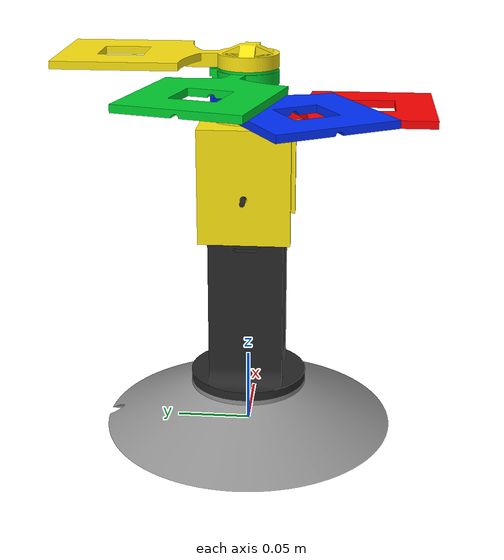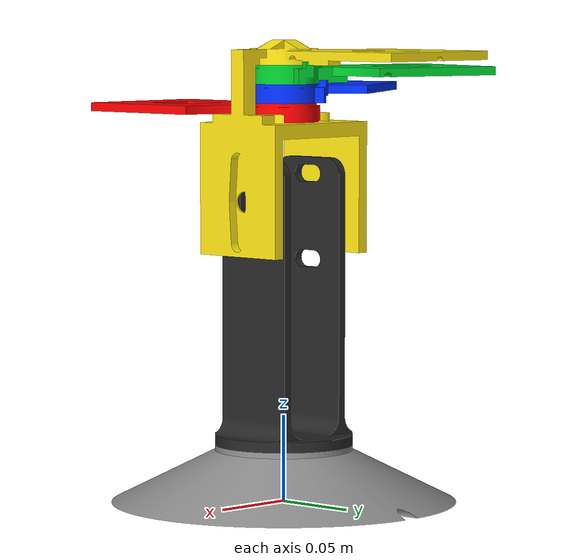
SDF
<sdf version='1.11'>
  <model name='solar_flower'>
    <link name='base_footprint'>
      <inertial>
        <pose>0 0 0 0 0 0</pose>
        <mass>0.251</mass>
        <inertia>
          <ixx>0.000101</ixx>
          <ixy>0</ixy>
          <ixz>0</ixz>
          <iyy>0.000101</iyy>
          <iyz>0</iyz>
          <izz>0.000101</izz>
        </inertia>
      </inertial>
      <visual name='base_footprint_fixed_joint_lump__base_link_visual'>
        <pose>0 0 0 1.5708 0 0</pose>
        <geometry>
          <mesh>
            <scale>0.001 0.001 0.001</scale>
            <uri>model://solar_flower_description/meshes/base_link.stl</uri>
          </mesh>
        </geometry>
        <material>
          <diffuse>0.5625 0.5625 0.5625 1</diffuse>
          <ambient>0.5625 0.5625 0.5625 1</ambient>
        </material>
      </visual>
    </link>
    <joint name='azimuth_joint' type='revolute'>
      <pose relative_to='base_footprint'>0 0 0 1.5708 0 0</pose>
      <parent>base_footprint</parent>
      <child>azimuth_link</child>
      <axis>
        <xyz>0 1 0</xyz>
        <limit>
          <lower>-2.7999999999999998</lower>
          <upper>2.7999999999999998</upper>
          <effort>10</effort>
          <velocity>1</velocity>
        </limit>
        <dynamics>
          <spring_reference>0</spring_reference>
          <spring_stiffness>0</spring_stiffness>
        </dynamics>
      </axis>
    </joint>
    <link name='azimuth_link'>
      <pose relative_to='azimuth_joint'>0 0 0 0 0 0</pose>
      <inertial>
        <pose>0 0 0 0 0 0</pose>
        <mass>0.14999999999999999</mass>
        <inertia>
          <ixx>8.0000000000000007e-05</ixx>
          <ixy>0</ixy>
          <ixz>0</ixz>
          <iyy>8.0000000000000007e-05</iyy>
          <iyz>0</iyz>
          <izz>8.0000000000000007e-05</izz>
        </inertia>
      </inertial>
      <visual name='azimuth_link_visual'>
        <pose>0 0 0 0 0 0</pose>
        <geometry>
          <mesh>
            <scale>0.001 0.001 0.001</scale>
            <uri>model://solar_flower_description/meshes/azimuth_link.stl</uri>
          </mesh>
        </geometry>
        <material>
          <diffuse>0.149999991 0.149999991 0.149999991 1</diffuse>
          <ambient>0.149999991 0.149999991 0.149999991 1</ambient>
        </material>
      </visual>
    </link>
    <joint name='tilt_joint' type='revolute'>
      <pose relative_to='azimuth_link'>0.032500000000000001 0.17535000000000001 0 0 0 0</pose>
      <parent>azimuth_link</parent>
      <child>tilt_link</child>
      <axis>
        <xyz>1 0 0</xyz>
        <limit>
          <lower>-0.52400000000000002</lower>
          <upper>0.52400000000000002</upper>
          <effort>10</effort>
          <velocity>1</velocity>
        </limit>
        <dynamics>
          <spring_reference>0</spring_reference>
          <spring_stiffness>0</spring_stiffness>
        </dynamics>
      </axis>
    </joint>
    <link name='tilt_link'>
      <pose relative_to='tilt_joint'>0 0 0 0 0 0</pose>
      <inertial>
        <pose>0 0 0 0 0 0</pose>
        <mass>0.20000000000000001</mass>
        <inertia>
          <ixx>0.0001</ixx>
          <ixy>0</ixy>
          <ixz>0</ixz>
          <iyy>0.0001</iyy>
          <iyz>0</iyz>
          <izz>0.0001</izz>
        </inertia>
      </inertial>
      <visual name='tilt_link_visual'>
        <pose>-0.032500000000000001 -0.17535000000000001 0 0 0 0</pose>
        <geometry>
          <mesh>
            <scale>0.001 0.001 0.001</scale>
            <uri>model://solar_flower_description/meshes/tilt_link.stl</uri>
          </mesh>
        </geometry>
        <material>
          <diffuse>1 0.900000036 0.0625 1</diffuse>
          <ambient>1 0.900000036 0.0625 1</ambient>
        </material>
      </visual>
    </link>
    <joint name='blue_petal_joint' type='revolute'>
      <pose relative_to='tilt_link'>-0.032500000000000001 0.059950000000000003 0 0 0 0</pose>
      <parent>tilt_link</parent>
      <child>blue_petal_link</child>
      <axis>
        <xyz>0 1 0</xyz>
        <limit>
          <lower>-2.0939999999999999</lower>
          <upper>0</upper>
          <effort>5</effort>
          <velocity>1</velocity>
        </limit>
        <dynamics>
          <spring_reference>0</spring_reference>
          <spring_stiffness>0</spring_stiffness>
        </dynamics>
      </axis>
    </joint>
    <link name='blue_petal_link'>
      <pose relative_to='blue_petal_joint'>0 0 0 0 0 0</pose>
      <inertial>
        <pose>0 0 0 0 0 0</pose>
        <mass>0.050000000000000003</mass>
        <inertia>
          <ixx>2.0000000000000002e-05</ixx>
          <ixy>0</ixy>
          <ixz>0</ixz>
          <iyy>2.0000000000000002e-05</iyy>
          <iyz>0</iyz>
          <izz>2.0000000000000002e-05</izz>
        </inertia>
      </inertial>
      <visual name='blue_petal_link_visual'>
        <pose>0 -0.23530000000000001 0 0 0 0</pose>
        <geometry>
          <mesh>
            <scale>0.001 0.001 0.001</scale>
            <uri>model://solar_flower_description/meshes/blue_petal_link.stl</uri>
          </mesh>
        </geometry>
        <material>
          <diffuse>0 0.187500015 1 1</diffuse>
          <ambient>0 0.187500015 1 1</ambient>
        </material>
      </visual>
    </link>
    <joint name='green_petal_joint' type='revolute'>
      <pose relative_to='tilt_link'>-0.032500000000000001 0.070949999999999999 0 0 0 0</pose>
      <parent>tilt_link</parent>
      <child>green_petal_link</child>
      <axis>
        <xyz>0 1 0</xyz>
        <limit>
          <lower>-1.3089999999999999</lower>
          <upper>0</upper>
          <effort>5</effort>
          <velocity>1</velocity>
        </limit>
        <dynamics>
          <spring_reference>0</spring_reference>
          <spring_stiffness>0</spring_stiffness>
        </dynamics>
      </axis>
    </joint>
    <link name='green_petal_link'>
      <pose relative_to='green_petal_joint'>0 0 0 0 0 0</pose>
      <inertial>
        <pose>0 0 0 0 0 0</pose>
        <mass>0.050000000000000003</mass>
        <inertia>
          <ixx>2.0000000000000002e-05</ixx>
          <ixy>0</ixy>
          <ixz>0</ixz>
          <iyy>2.0000000000000002e-05</iyy>
          <iyz>0</iyz>
          <izz>2.0000000000000002e-05</izz>
        </inertia>
      </inertial>
      <visual name='green_petal_link_visual'>
        <pose>0 -0.24629999999999999 0 0 0 0</pose>
        <geometry>
          <mesh>
            <scale>0.001 0.001 0.001</scale>
            <uri>model://solar_flower_description/meshes/green_petal_link.stl</uri>
          </mesh>
        </geometry>
        <material>
          <diffuse>0 0.81249994 0.187500015 1</diffuse>
          <ambient>0 0.81249994 0.187500015 1</ambient>
        </material>
      </visual>
    </link>
    <joint name='red_petal_joint' type='revolute'>
      <pose relative_to='tilt_link'>-0.032500000000000001 0.04895 0 0 0 0</pose>
      <parent>tilt_link</parent>
      <child>red_petal_link</child>
      <axis>
        <xyz>0 1 0</xyz>
        <limit>
          <lower>-3.1419999999999999</lower>
          <upper>0</upper>
          <effort>5</effort>
          <velocity>1</velocity>
        </limit>
        <dynamics>
          <spring_reference>0</spring_reference>
          <spring_stiffness>0</spring_stiffness>
        </dynamics>
      </axis>
    </joint>
    <link name='red_petal_link'>
      <pose relative_to='red_petal_joint'>0 0 0 0 0 0</pose>
      <inertial>
        <pose>0 0 0 0 0 0</pose>
        <mass>0.050000000000000003</mass>
        <inertia>
          <ixx>2.0000000000000002e-05</ixx>
          <ixy>0</ixy>
          <ixz>0</ixz>
          <iyy>2.0000000000000002e-05</iyy>
          <iyz>0</iyz>
          <izz>2.0000000000000002e-05</izz>
        </inertia>
      </inertial>
      <visual name='red_petal_link_visual'>
        <pose>0 -0.2243 0 0 0 0</pose>
        <geometry>
          <mesh>
            <scale>0.001 0.001 0.001</scale>
            <uri>model://solar_flower_description/meshes/red_petal_link.stl</uri>
          </mesh>
        </geometry>
        <material>
          <diffuse>1 0 0 1</diffuse>
          <ambient>1 0 0 1</ambient>
        </material>
      </visual>
    </link>
    <plugin name='gz::sim::systems::JointPositionController' filename='gz-sim-joint-position-controller-system'>
      <joint_name>azimuth_joint</joint_name>
      <joint_index>0</joint_index>
      <p_gain>5.0</p_gain>
      <i_gain>0.0</i_gain>
      <d_gain>0.2</d_gain>
      <cmd_max>5.0</cmd_max>
      <cmd_min>-5.0</cmd_min>
      <topic>/azimuth_cmd_pos</topic>
    </plugin>
    <plugin name='gz::sim::systems::JointPositionController' filename='gz-sim-joint-position-controller-system'>
      <joint_name>tilt_joint</joint_name>
      <joint_index>0</joint_index>
      <p_gain>5.0</p_gain>
      <i_gain>0.0</i_gain>
      <d_gain>0.2</d_gain>
      <cmd_max>5.0</cmd_max>
      <cmd_min>-5.0</cmd_min>
      <topic>/tilt_cmd_pos</topic>
    </plugin>
    <plugin name='gz::sim::systems::JointPositionController' filename='gz-sim-joint-position-controller-system'>
      <joint_name>red_petal_joint</joint_name>
      <joint_index>0</joint_index>
      <p_gain>5.0</p_gain>
      <i_gain>0.0</i_gain>
      <d_gain>0.2</d_gain>
      <cmd_max>5.0</cmd_max>
      <cmd_min>-5.0</cmd_min>
      <topic>/red_petal_cmd_pos</topic>
    </plugin>
    <plugin name='gz::sim::systems::JointPositionController' filename='gz-sim-joint-position-controller-system'>
      <joint_name>blue_petal_joint</joint_name>
      <joint_index>0</joint_index>
      <p_gain>5.0</p_gain>
      <i_gain>0.0</i_gain>
      <d_gain>0.2</d_gain>
      <cmd_max>5.0</cmd_max>
      <cmd_min>-5.0</cmd_min>
      <topic>/blue_petal_cmd_pos</topic>
    </plugin>
    <plugin name='gz::sim::systems::JointPositionController' filename='gz-sim-joint-position-controller-system'>
      <joint_name>green_petal_joint</joint_name>
      <joint_index>0</joint_index>
      <p_gain>5.0</p_gain>
      <i_gain>0.0</i_gain>
      <d_gain>0.2</d_gain>
      <cmd_max>5.0</cmd_max>
      <cmd_min>-5.0</cmd_min>
      <topic>/green_petal_cmd_pos</topic>
    </plugin>
    <frame name='base_footprint_to_base_link' attached_to='base_footprint'>
      <pose>0 0 0 1.5708 0 0</pose>
    </frame>
    <frame name='base_link' attached_to='base_footprint_to_base_link'>
      <pose>0 0 0 0 0 0</pose>
    </frame>

       <!-- Gazebo joint position controllers -->

    <plugin filename="libgz-sim-joint-position-controller-system.so"
            name="gz::sim::systems::JointPositionController">
      <joint_name>azimuth_joint</joint_name>
      <joint_index>0</joint_index>
      <p_gain>5.0</p_gain>
      <i_gain>0.0</i_gain>
      <d_gain>0.2</d_gain>
      <cmd_max>5.0</cmd_max>
      <cmd_min>-5.0</cmd_min>
      <topic>/azimuth_cmd_pos</topic>
    </plugin>

    <plugin filename="libgz-sim-joint-position-controller-system.so"
            name="gz::sim::systems::JointPositionController">
      <joint_name>tilt_joint</joint_name>
      <joint_index>0</joint_index>
      <p_gain>5.0</p_gain>
      <i_gain>0.0</i_gain>
      <d_gain>0.2</d_gain>
      <cmd_max>5.0</cmd_max>
      <cmd_min>-5.0</cmd_min>
      <topic>/tilt_cmd_pos</topic>
    </plugin>

    <plugin filename="libgz-sim-joint-position-controller-system.so"
            name="gz::sim::systems::JointPositionController">
      <joint_name>red_petal_joint</joint_name>
      <joint_index>0</joint_index>
      <p_gain>5.0</p_gain>
      <i_gain>0.0</i_gain>
      <d_gain>0.2</d_gain>
      <cmd_max>5.0</cmd_max>
      <cmd_min>-5.0</cmd_min>
      <topic>/red_petal_cmd_pos</topic>
    </plugin>

    <plugin filename="libgz-sim-joint-position-controller-system.so"
            name="gz::sim::systems::JointPositionController">
      <joint_name>blue_petal_joint</joint_name>
      <joint_index>0</joint_index>
      <p_gain>5.0</p_gain>
      <i_gain>0.0</i_gain>
      <d_gain>0.2</d_gain>
      <cmd_max>5.0</cmd_max>
      <cmd_min>-5.0</cmd_min>
      <topic>/blue_petal_cmd_pos</topic>
    </plugin>

        <!-- Anchor the solar flower base to the Gazebo world -->
    <joint name="world_to_base_fixed" type="fixed">
      <parent>world</parent>
      <child>base_footprint</child>
    </joint>

    <plugin filename="libgz-sim-joint-position-controller-system.so"
            name="gz::sim::systems::JointPositionController">
      <joint_name>green_petal_joint</joint_name>
      <joint_index>0</joint_index>
      <p_gain>5.0</p_gain>
      <i_gain>0.0</i_gain>
      <d_gain>0.2</d_gain>
      <cmd_max>5.0</cmd_max>
      <cmd_min>-5.0</cmd_min>
      <topic>/green_petal_cmd_pos</topic>
    </plugin>
  </model>
</sdf>
